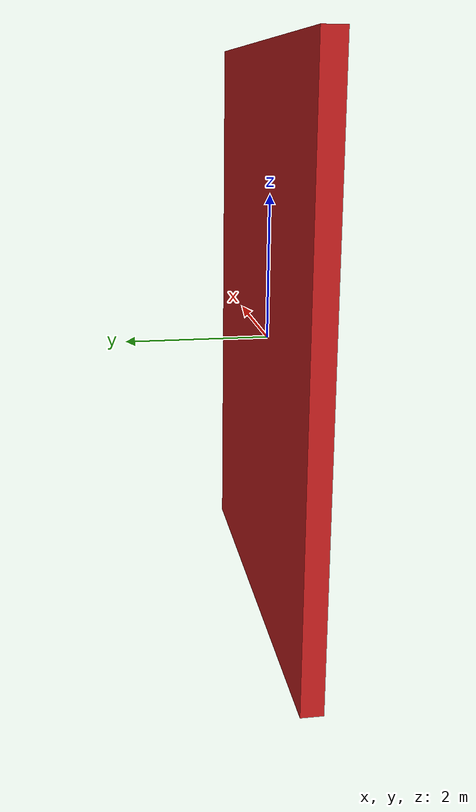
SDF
<?xml version="1.0"?>
<sdf version="1.8">
<model name="moving_panel">
  <static>false</static>
  <link name="link">
    <gravity>false</gravity>
    <inertial>
      <mass>10</mass>
      <inertia>
        <ixx>5</ixx><iyy>5</iyy><izz>5</izz>
        <ixy>0</ixy><ixz>0</ixz><iyz>0</iyz>
      </inertia>
    </inertial>
    <collision name="collision">
      <geometry>
        <box>
          <size>6 0.3 8</size>
        </box>
      </geometry>
    </collision>
    <visual name="visual">
      <cast_shadows>false</cast_shadows>
      <geometry>
        <box>
          <size>6 0.3 8</size>
        </box>
      </geometry>
      <material>
        <ambient>0.75 0.08 0.08 1</ambient>
        <diffuse>0.8 0.12 0.12 1</diffuse>
        <specular>0.2 0.2 0.2 1</specular>
      </material>
    </visual>
  </link>
</model>
</sdf>
